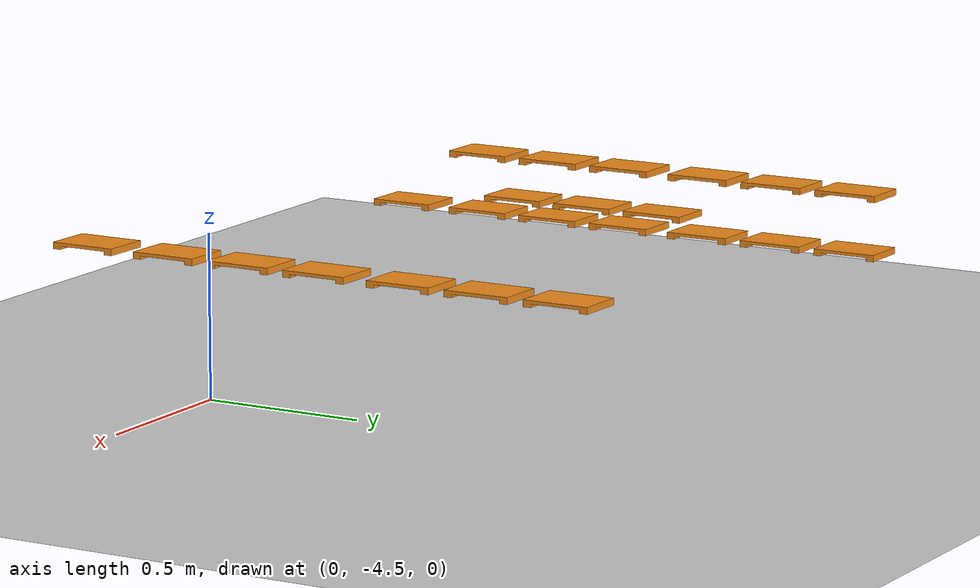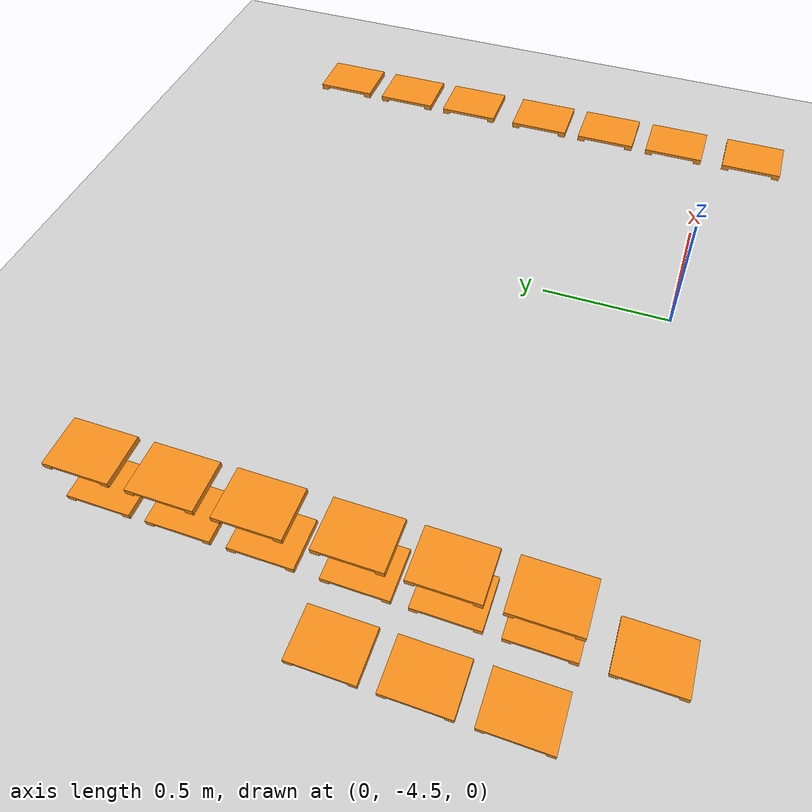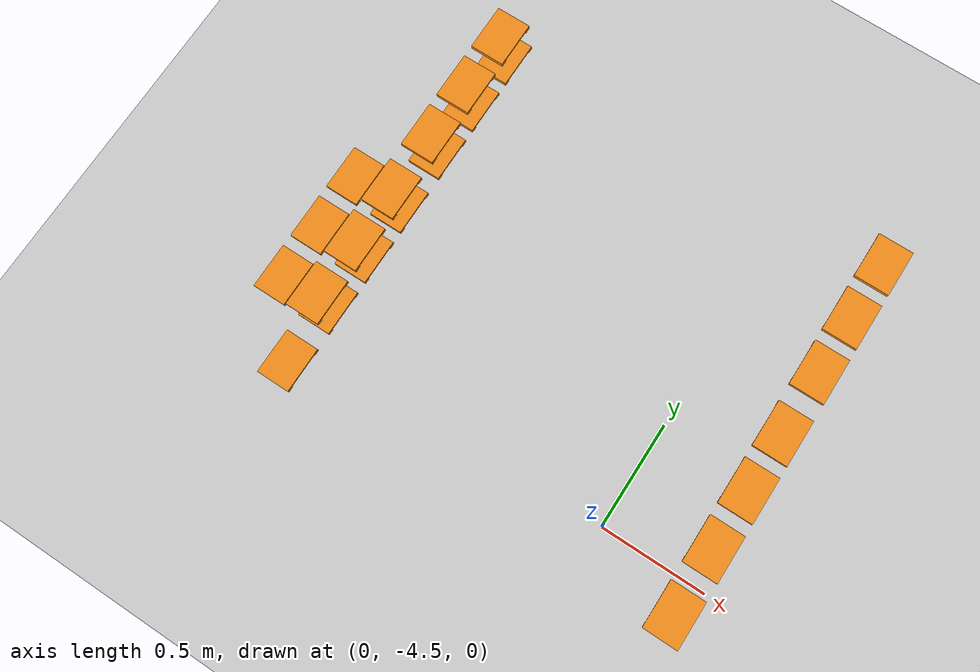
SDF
<sdf version="1.7">
 <world name="default">
  <model name="ground_plane">
   <static>1</static>
   <link name="link">
    <collision name="collision">
     <geometry><plane><normal>0 0 1</normal><size>100 100</size></plane></geometry>
     <surface>
      <contact><collide_bitmask>65535</collide_bitmask></contact>
      <friction><ode><mu>1</mu><mu2>1</mu2></ode></friction>
     </surface>
    </collision>
    <visual name="visual">
     <cast_shadows>0</cast_shadows>
     <geometry><plane><normal>0 0 1</normal><size>100 100</size></plane></geometry>
     <material>
      <script><uri>file://media/materials/scripts/gazebo.material</uri><name>Gazebo/Grey</name></script>
     </material>
    </visual>
   </link>
  </model>
  <model name="pallet_124">
   <pose>-1.61447 -3.8625 0.330966 7e-06 -0.013426 6e-06</pose>
   <link name="link">
    <inertial>
     <pose>0 0 0 0 -0 1.571</pose>
     <inertia>
      <ixx>0.00220983</ixx>
      <ixy>0</ixy>
      <ixz>0</ixz>
      <iyy>0.00128087</iyy>
      <iyz>0</iyz>
      <izz>0.00244903</izz>
     </inertia>
     <mass>0.01</mass>
    </inertial>
    <visual name="visual1">
     <cast_shadows>0</cast_shadows>
     <geometry><mesh><uri>model://pallet/meshes/pallet.stl</uri></mesh></geometry>
     <material>
      <script><uri>file://media/materials/scripts/gazebo.material</uri><name>Gazebo/Orange</name></script>
      <shader type="pixel"><normal_map>__default__</normal_map></shader>
      <emissive>0 0 0 1</emissive>
     </material>
     <pose>0 0 -0 0 -0 1.571</pose>
    </visual>
    <collision name="collision_0">
     <pose>0 0 0 0 -0 1.571</pose>
     <geometry><mesh><uri>model://pallet/meshes/pallet.stl</uri></mesh></geometry>
     <surface>
      <friction>
       <ode><mu>1</mu><mu2>1</mu2><fdir1>0 0 0</fdir1><slip1>0</slip1><slip2>0</slip2></ode>
       <torsional>
        <coefficient>1</coefficient>
        <patch_radius>0</patch_radius>
        <surface_radius>0</surface_radius>
        <use_patch_radius>1</use_patch_radius>
        <ode><slip>0</slip></ode>
       </torsional>
      </friction>
      <bounce><restitution_coefficient>0</restitution_coefficient><threshold>1e+06</threshold></bounce>
      <contact>
       <collide_without_contact>0</collide_without_contact>
       <collide_without_contact_bitmask>1</collide_without_contact_bitmask>
       <collide_bitmask>1</collide_bitmask>
       <ode>
        <soft_cfm>0</soft_cfm>
        <soft_erp>0.2</soft_erp>
        <kp>1e+13</kp>
        <kd>1</kd>
        <max_vel>0.01</max_vel>
        <min_depth>0</min_depth>
       </ode>
       <bullet>
        <split_impulse>1</split_impulse>
        <split_impulse_penetration_threshold>-0.01</split_impulse_penetration_threshold>
        <soft_cfm>0</soft_cfm>
        <soft_erp>0.2</soft_erp>
        <kp>1e+13</kp>
        <kd>1</kd>
       </bullet>
      </contact>
     </surface>
    </collision>
   </link>
   <static>0</static>
  </model>
  <model name="pallet_125">
   <pose>-1.61446 -4.1125 0.330963 2.5e-05 -0.013419 5e-06</pose>
   <link name="link">
    <inertial>
     <pose>0 0 0 0 -0 1.571</pose>
     <inertia>
      <ixx>0.00220983</ixx>
      <ixy>0</ixy>
      <ixz>0</ixz>
      <iyy>0.00128087</iyy>
      <iyz>0</iyz>
      <izz>0.00244903</izz>
     </inertia>
     <mass>0.01</mass>
    </inertial>
    <visual name="visual1">
     <cast_shadows>0</cast_shadows>
     <geometry><mesh><uri>model://pallet/meshes/pallet.stl</uri></mesh></geometry>
     <material>
      <script><uri>file://media/materials/scripts/gazebo.material</uri><name>Gazebo/Orange</name></script>
      <shader type="pixel"><normal_map>__default__</normal_map></shader>
      <emissive>0 0 0 1</emissive>
     </material>
     <pose>0 0 -0 0 -0 1.571</pose>
    </visual>
    <collision name="collision_0">
     <pose>0 0 0 0 -0 1.571</pose>
     <geometry><mesh><uri>model://pallet/meshes/pallet.stl</uri></mesh></geometry>
     <surface>
      <friction>
       <ode><mu>1</mu><mu2>1</mu2><fdir1>0 0 0</fdir1><slip1>0</slip1><slip2>0</slip2></ode>
       <torsional>
        <coefficient>1</coefficient>
        <patch_radius>0</patch_radius>
        <surface_radius>0</surface_radius>
        <use_patch_radius>1</use_patch_radius>
        <ode><slip>0</slip></ode>
       </torsional>
      </friction>
      <bounce><restitution_coefficient>0</restitution_coefficient><threshold>1e+06</threshold></bounce>
      <contact>
       <collide_without_contact>0</collide_without_contact>
       <collide_without_contact_bitmask>1</collide_without_contact_bitmask>
       <collide_bitmask>1</collide_bitmask>
       <ode>
        <soft_cfm>0</soft_cfm>
        <soft_erp>0.2</soft_erp>
        <kp>1e+13</kp>
        <kd>1</kd>
        <max_vel>0.01</max_vel>
        <min_depth>0</min_depth>
       </ode>
       <bullet>
        <split_impulse>1</split_impulse>
        <split_impulse_penetration_threshold>-0.01</split_impulse_penetration_threshold>
        <soft_cfm>0</soft_cfm>
        <soft_erp>0.2</soft_erp>
        <kp>1e+13</kp>
        <kd>1</kd>
       </bullet>
      </contact>
     </surface>
    </collision>
   </link>
   <static>0</static>
  </model>
  <model name="pallet_126">
   <pose>-1.61446 -4.3625 0.330962 2.5e-05 -0.013419 7e-06</pose>
   <link name="link">
    <inertial>
     <pose>0 0 0 0 -0 1.571</pose>
     <inertia>
      <ixx>0.00220983</ixx>
      <ixy>0</ixy>
      <ixz>0</ixz>
      <iyy>0.00128087</iyy>
      <iyz>0</iyz>
      <izz>0.00244903</izz>
     </inertia>
     <mass>0.01</mass>
    </inertial>
    <visual name="visual1">
     <cast_shadows>0</cast_shadows>
     <geometry><mesh><uri>model://pallet/meshes/pallet.stl</uri></mesh></geometry>
     <material>
      <script><uri>file://media/materials/scripts/gazebo.material</uri><name>Gazebo/Orange</name></script>
      <shader type="pixel"><normal_map>__default__</normal_map></shader>
      <emissive>0 0 0 1</emissive>
     </material>
     <pose>0 0 -0 0 -0 1.571</pose>
    </visual>
    <collision name="collision_0">
     <pose>0 0 0 0 -0 1.571</pose>
     <geometry><mesh><uri>model://pallet/meshes/pallet.stl</uri></mesh></geometry>
     <surface>
      <friction>
       <ode><mu>1</mu><mu2>1</mu2><fdir1>0 0 0</fdir1><slip1>0</slip1><slip2>0</slip2></ode>
       <torsional>
        <coefficient>1</coefficient>
        <patch_radius>0</patch_radius>
        <surface_radius>0</surface_radius>
        <use_patch_radius>1</use_patch_radius>
        <ode><slip>0</slip></ode>
       </torsional>
      </friction>
      <bounce><restitution_coefficient>0</restitution_coefficient><threshold>1e+06</threshold></bounce>
      <contact>
       <collide_without_contact>0</collide_without_contact>
       <collide_without_contact_bitmask>1</collide_without_contact_bitmask>
       <collide_bitmask>1</collide_bitmask>
       <ode>
        <soft_cfm>0</soft_cfm>
        <soft_erp>0.2</soft_erp>
        <kp>1e+13</kp>
        <kd>1</kd>
        <max_vel>0.01</max_vel>
        <min_depth>0</min_depth>
       </ode>
       <bullet>
        <split_impulse>1</split_impulse>
        <split_impulse_penetration_threshold>-0.01</split_impulse_penetration_threshold>
        <soft_cfm>0</soft_cfm>
        <soft_erp>0.2</soft_erp>
        <kp>1e+13</kp>
        <kd>1</kd>
       </bullet>
      </contact>
     </surface>
    </collision>
   </link>
   <static>0</static>
  </model>
  <model name="pallet_133">
   <pose>-1.39426 -3.088 0.331018 -2e-06 -0.012783 -1e-06</pose>
   <link name="link">
    <inertial>
     <pose>0 0 0 0 -0 1.571</pose>
     <inertia>
      <ixx>0.00220983</ixx>
      <ixy>0</ixy>
      <ixz>0</ixz>
      <iyy>0.00128087</iyy>
      <iyz>0</iyz>
      <izz>0.00244903</izz>
     </inertia>
     <mass>0.01</mass>
    </inertial>
    <visual name="visual1">
     <cast_shadows>0</cast_shadows>
     <geometry><mesh><uri>model://pallet/meshes/pallet.stl</uri></mesh></geometry>
     <material>
      <script><uri>file://media/materials/scripts/gazebo.material</uri><name>Gazebo/Orange</name></script>
      <shader type="pixel"><normal_map>__default__</normal_map></shader>
      <emissive>0 0 0 1</emissive>
     </material>
     <pose>0 0 -0 0 -0 1.571</pose>
    </visual>
    <collision name="collision_0">
     <pose>0 0 0 0 -0 1.571</pose>
     <geometry><mesh><uri>model://pallet/meshes/pallet.stl</uri></mesh></geometry>
     <surface>
      <friction>
       <ode><mu>1</mu><mu2>1</mu2><fdir1>0 0 0</fdir1><slip1>0</slip1><slip2>0</slip2></ode>
       <torsional>
        <coefficient>1</coefficient>
        <patch_radius>0</patch_radius>
        <surface_radius>0</surface_radius>
        <use_patch_radius>1</use_patch_radius>
        <ode><slip>0</slip></ode>
       </torsional>
      </friction>
      <bounce><restitution_coefficient>0</restitution_coefficient><threshold>1e+06</threshold></bounce>
      <contact>
       <collide_without_contact>0</collide_without_contact>
       <collide_without_contact_bitmask>1</collide_without_contact_bitmask>
       <collide_bitmask>1</collide_bitmask>
       <ode>
        <soft_cfm>0</soft_cfm>
        <soft_erp>0.2</soft_erp>
        <kp>1e+13</kp>
        <kd>1</kd>
        <max_vel>0.01</max_vel>
        <min_depth>0</min_depth>
       </ode>
       <bullet>
        <split_impulse>1</split_impulse>
        <split_impulse_penetration_threshold>-0.01</split_impulse_penetration_threshold>
        <soft_cfm>0</soft_cfm>
        <soft_erp>0.2</soft_erp>
        <kp>1e+13</kp>
        <kd>1</kd>
       </bullet>
      </contact>
     </surface>
    </collision>
   </link>
   <static>0</static>
  </model>
  <model name="pallet_134">
   <pose>-1.39426 -3.338 0.331014 4.2e-05 -0.012779 7e-06</pose>
   <link name="link">
    <inertial>
     <pose>0 0 0 0 -0 1.571</pose>
     <inertia>
      <ixx>0.00220983</ixx>
      <ixy>0</ixy>
      <ixz>0</ixz>
      <iyy>0.00128087</iyy>
      <iyz>0</iyz>
      <izz>0.00244903</izz>
     </inertia>
     <mass>0.01</mass>
    </inertial>
    <visual name="visual1">
     <cast_shadows>0</cast_shadows>
     <geometry><mesh><uri>model://pallet/meshes/pallet.stl</uri></mesh></geometry>
     <material>
      <script><uri>file://media/materials/scripts/gazebo.material</uri><name>Gazebo/Orange</name></script>
      <shader type="pixel"><normal_map>__default__</normal_map></shader>
      <emissive>0 0 0 1</emissive>
     </material>
     <pose>0 0 -0 0 -0 1.571</pose>
    </visual>
    <collision name="collision_0">
     <pose>0 0 0 0 -0 1.571</pose>
     <geometry><mesh><uri>model://pallet/meshes/pallet.stl</uri></mesh></geometry>
     <surface>
      <friction>
       <ode><mu>1</mu><mu2>1</mu2><fdir1>0 0 0</fdir1><slip1>0</slip1><slip2>0</slip2></ode>
       <torsional>
        <coefficient>1</coefficient>
        <patch_radius>0</patch_radius>
        <surface_radius>0</surface_radius>
        <use_patch_radius>1</use_patch_radius>
        <ode><slip>0</slip></ode>
       </torsional>
      </friction>
      <bounce><restitution_coefficient>0</restitution_coefficient><threshold>1e+06</threshold></bounce>
      <contact>
       <collide_without_contact>0</collide_without_contact>
       <collide_without_contact_bitmask>1</collide_without_contact_bitmask>
       <collide_bitmask>1</collide_bitmask>
       <ode>
        <soft_cfm>0</soft_cfm>
        <soft_erp>0.2</soft_erp>
        <kp>1e+13</kp>
        <kd>1</kd>
        <max_vel>0.01</max_vel>
        <min_depth>0</min_depth>
       </ode>
       <bullet>
        <split_impulse>1</split_impulse>
        <split_impulse_penetration_threshold>-0.01</split_impulse_penetration_threshold>
        <soft_cfm>0</soft_cfm>
        <soft_erp>0.2</soft_erp>
        <kp>1e+13</kp>
        <kd>1</kd>
       </bullet>
      </contact>
     </surface>
    </collision>
   </link>
   <static>0</static>
  </model>
  <model name="pallet_135">
   <pose>-1.39426 -3.588 0.331014 3.9e-05 -0.012779 1.1e-05</pose>
   <link name="link">
    <inertial>
     <pose>0 0 0 0 -0 1.571</pose>
     <inertia>
      <ixx>0.00220983</ixx>
      <ixy>0</ixy>
      <ixz>0</ixz>
      <iyy>0.00128087</iyy>
      <iyz>0</iyz>
      <izz>0.00244903</izz>
     </inertia>
     <mass>0.01</mass>
    </inertial>
    <visual name="visual1">
     <cast_shadows>0</cast_shadows>
     <geometry><mesh><uri>model://pallet/meshes/pallet.stl</uri></mesh></geometry>
     <material>
      <script><uri>file://media/materials/scripts/gazebo.material</uri><name>Gazebo/Orange</name></script>
      <shader type="pixel"><normal_map>__default__</normal_map></shader>
      <emissive>0 0 0 1</emissive>
     </material>
     <pose>0 0 -0 0 -0 1.571</pose>
    </visual>
    <collision name="collision_0">
     <pose>0 0 0 0 -0 1.571</pose>
     <geometry><mesh><uri>model://pallet/meshes/pallet.stl</uri></mesh></geometry>
     <surface>
      <friction>
       <ode><mu>1</mu><mu2>1</mu2><fdir1>0 0 0</fdir1><slip1>0</slip1><slip2>0</slip2></ode>
       <torsional>
        <coefficient>1</coefficient>
        <patch_radius>0</patch_radius>
        <surface_radius>0</surface_radius>
        <use_patch_radius>1</use_patch_radius>
        <ode><slip>0</slip></ode>
       </torsional>
      </friction>
      <bounce><restitution_coefficient>0</restitution_coefficient><threshold>1e+06</threshold></bounce>
      <contact>
       <collide_without_contact>0</collide_without_contact>
       <collide_without_contact_bitmask>1</collide_without_contact_bitmask>
       <collide_bitmask>1</collide_bitmask>
       <ode>
        <soft_cfm>0</soft_cfm>
        <soft_erp>0.2</soft_erp>
        <kp>1e+13</kp>
        <kd>1</kd>
        <max_vel>0.01</max_vel>
        <min_depth>0</min_depth>
       </ode>
       <bullet>
        <split_impulse>1</split_impulse>
        <split_impulse_penetration_threshold>-0.01</split_impulse_penetration_threshold>
        <soft_cfm>0</soft_cfm>
        <soft_erp>0.2</soft_erp>
        <kp>1e+13</kp>
        <kd>1</kd>
       </bullet>
      </contact>
     </surface>
    </collision>
   </link>
   <static>0</static>
  </model>
  <model name="pallet_136">
   <pose>-1.39425 -3.8625 0.331016 4e-06 -0.012785 7e-06</pose>
   <link name="link">
    <inertial>
     <pose>0 0 0 0 -0 1.571</pose>
     <inertia>
      <ixx>0.00220983</ixx>
      <ixy>0</ixy>
      <ixz>0</ixz>
      <iyy>0.00128087</iyy>
      <iyz>0</iyz>
      <izz>0.00244903</izz>
     </inertia>
     <mass>0.01</mass>
    </inertial>
    <visual name="visual1">
     <cast_shadows>0</cast_shadows>
     <geometry><mesh><uri>model://pallet/meshes/pallet.stl</uri></mesh></geometry>
     <material>
      <script><uri>file://media/materials/scripts/gazebo.material</uri><name>Gazebo/Orange</name></script>
      <shader type="pixel"><normal_map>__default__</normal_map></shader>
      <emissive>0 0 0 1</emissive>
     </material>
     <pose>0 0 -0 0 -0 1.571</pose>
    </visual>
    <collision name="collision_0">
     <pose>0 0 0 0 -0 1.571</pose>
     <geometry><mesh><uri>model://pallet/meshes/pallet.stl</uri></mesh></geometry>
     <surface>
      <friction>
       <ode><mu>1</mu><mu2>1</mu2><fdir1>0 0 0</fdir1><slip1>0</slip1><slip2>0</slip2></ode>
       <torsional>
        <coefficient>1</coefficient>
        <patch_radius>0</patch_radius>
        <surface_radius>0</surface_radius>
        <use_patch_radius>1</use_patch_radius>
        <ode><slip>0</slip></ode>
       </torsional>
      </friction>
      <bounce><restitution_coefficient>0</restitution_coefficient><threshold>1e+06</threshold></bounce>
      <contact>
       <collide_without_contact>0</collide_without_contact>
       <collide_without_contact_bitmask>1</collide_without_contact_bitmask>
       <collide_bitmask>1</collide_bitmask>
       <ode>
        <soft_cfm>0</soft_cfm>
        <soft_erp>0.2</soft_erp>
        <kp>1e+13</kp>
        <kd>1</kd>
        <max_vel>0.01</max_vel>
        <min_depth>0</min_depth>
       </ode>
       <bullet>
        <split_impulse>1</split_impulse>
        <split_impulse_penetration_threshold>-0.01</split_impulse_penetration_threshold>
        <soft_cfm>0</soft_cfm>
        <soft_erp>0.2</soft_erp>
        <kp>1e+13</kp>
        <kd>1</kd>
       </bullet>
      </contact>
     </surface>
    </collision>
   </link>
   <static>0</static>
  </model>
  <model name="pallet_137">
   <pose>-1.39425 -4.1125 0.331014 2.4e-05 -0.012779 7e-06</pose>
   <link name="link">
    <inertial>
     <pose>0 0 0 0 -0 1.571</pose>
     <inertia>
      <ixx>0.00220983</ixx>
      <ixy>0</ixy>
      <ixz>0</ixz>
      <iyy>0.00128087</iyy>
      <iyz>0</iyz>
      <izz>0.00244903</izz>
     </inertia>
     <mass>0.01</mass>
    </inertial>
    <visual name="visual1">
     <cast_shadows>0</cast_shadows>
     <geometry><mesh><uri>model://pallet/meshes/pallet.stl</uri></mesh></geometry>
     <material>
      <script><uri>file://media/materials/scripts/gazebo.material</uri><name>Gazebo/Orange</name></script>
      <shader type="pixel"><normal_map>__default__</normal_map></shader>
      <emissive>0 0 0 1</emissive>
     </material>
     <pose>0 0 -0 0 -0 1.571</pose>
    </visual>
    <collision name="collision_0">
     <pose>0 0 0 0 -0 1.571</pose>
     <geometry><mesh><uri>model://pallet/meshes/pallet.stl</uri></mesh></geometry>
     <surface>
      <friction>
       <ode><mu>1</mu><mu2>1</mu2><fdir1>0 0 0</fdir1><slip1>0</slip1><slip2>0</slip2></ode>
       <torsional>
        <coefficient>1</coefficient>
        <patch_radius>0</patch_radius>
        <surface_radius>0</surface_radius>
        <use_patch_radius>1</use_patch_radius>
        <ode><slip>0</slip></ode>
       </torsional>
      </friction>
      <bounce><restitution_coefficient>0</restitution_coefficient><threshold>1e+06</threshold></bounce>
      <contact>
       <collide_without_contact>0</collide_without_contact>
       <collide_without_contact_bitmask>1</collide_without_contact_bitmask>
       <collide_bitmask>1</collide_bitmask>
       <ode>
        <soft_cfm>0</soft_cfm>
        <soft_erp>0.2</soft_erp>
        <kp>1e+13</kp>
        <kd>1</kd>
        <max_vel>0.01</max_vel>
        <min_depth>0</min_depth>
       </ode>
       <bullet>
        <split_impulse>1</split_impulse>
        <split_impulse_penetration_threshold>-0.01</split_impulse_penetration_threshold>
        <soft_cfm>0</soft_cfm>
        <soft_erp>0.2</soft_erp>
        <kp>1e+13</kp>
        <kd>1</kd>
       </bullet>
      </contact>
     </surface>
    </collision>
   </link>
   <static>0</static>
  </model>
  <model name="pallet_138">
   <pose>-1.39425 -4.3625 0.331013 2.6e-05 -0.012777 8e-06</pose>
   <link name="link">
    <inertial>
     <pose>0 0 0 0 -0 1.571</pose>
     <inertia>
      <ixx>0.00220983</ixx>
      <ixy>0</ixy>
      <ixz>0</ixz>
      <iyy>0.00128087</iyy>
      <iyz>0</iyz>
      <izz>0.00244903</izz>
     </inertia>
     <mass>0.01</mass>
    </inertial>
    <visual name="visual1">
     <cast_shadows>0</cast_shadows>
     <geometry><mesh><uri>model://pallet/meshes/pallet.stl</uri></mesh></geometry>
     <material>
      <script><uri>file://media/materials/scripts/gazebo.material</uri><name>Gazebo/Orange</name></script>
      <shader type="pixel"><normal_map>__default__</normal_map></shader>
      <emissive>0 0 0 1</emissive>
     </material>
     <pose>0 0 -0 0 -0 1.571</pose>
    </visual>
    <collision name="collision_0">
     <pose>0 0 0 0 -0 1.571</pose>
     <geometry><mesh><uri>model://pallet/meshes/pallet.stl</uri></mesh></geometry>
     <surface>
      <friction>
       <ode><mu>1</mu><mu2>1</mu2><fdir1>0 0 0</fdir1><slip1>0</slip1><slip2>0</slip2></ode>
       <torsional>
        <coefficient>1</coefficient>
        <patch_radius>0</patch_radius>
        <surface_radius>0</surface_radius>
        <use_patch_radius>1</use_patch_radius>
        <ode><slip>0</slip></ode>
       </torsional>
      </friction>
      <bounce><restitution_coefficient>0</restitution_coefficient><threshold>1e+06</threshold></bounce>
      <contact>
       <collide_without_contact>0</collide_without_contact>
       <collide_without_contact_bitmask>1</collide_without_contact_bitmask>
       <collide_bitmask>1</collide_bitmask>
       <ode>
        <soft_cfm>0</soft_cfm>
        <soft_erp>0.2</soft_erp>
        <kp>1e+13</kp>
        <kd>1</kd>
        <max_vel>0.01</max_vel>
        <min_depth>0</min_depth>
       </ode>
       <bullet>
        <split_impulse>1</split_impulse>
        <split_impulse_penetration_threshold>-0.01</split_impulse_penetration_threshold>
        <soft_cfm>0</soft_cfm>
        <soft_erp>0.2</soft_erp>
        <kp>1e+13</kp>
        <kd>1</kd>
       </bullet>
      </contact>
     </surface>
    </collision>
   </link>
   <static>0</static>
  </model>
  <model name="pallet_140">
   <pose>-1.39425 -4.637 0.331013 8e-06 -0.012779 5e-06</pose>
   <link name="link">
    <inertial>
     <pose>0 0 0 0 -0 1.571</pose>
     <inertia>
      <ixx>0.00220983</ixx>
      <ixy>0</ixy>
      <ixz>0</ixz>
      <iyy>0.00128087</iyy>
      <iyz>0</iyz>
      <izz>0.00244903</izz>
     </inertia>
     <mass>0.01</mass>
    </inertial>
    <visual name="visual1">
     <cast_shadows>0</cast_shadows>
     <geometry><mesh><uri>model://pallet/meshes/pallet.stl</uri></mesh></geometry>
     <material>
      <script><uri>file://media/materials/scripts/gazebo.material</uri><name>Gazebo/Orange</name></script>
      <shader type="pixel"><normal_map>__default__</normal_map></shader>
      <emissive>0 0 0 1</emissive>
     </material>
     <pose>0 0 -0 0 -0 1.571</pose>
    </visual>
    <collision name="collision_0">
     <pose>0 0 0 0 -0 1.571</pose>
     <geometry><mesh><uri>model://pallet/meshes/pallet.stl</uri></mesh></geometry>
     <surface>
      <friction>
       <ode><mu>1</mu><mu2>1</mu2><fdir1>0 0 0</fdir1><slip1>0</slip1><slip2>0</slip2></ode>
       <torsional>
        <coefficient>1</coefficient>
        <patch_radius>0</patch_radius>
        <surface_radius>0</surface_radius>
        <use_patch_radius>1</use_patch_radius>
        <ode><slip>0</slip></ode>
       </torsional>
      </friction>
      <bounce><restitution_coefficient>0</restitution_coefficient><threshold>1e+06</threshold></bounce>
      <contact>
       <collide_without_contact>0</collide_without_contact>
       <collide_without_contact_bitmask>1</collide_without_contact_bitmask>
       <collide_bitmask>1</collide_bitmask>
       <ode>
        <soft_cfm>0</soft_cfm>
        <soft_erp>0.2</soft_erp>
        <kp>1e+13</kp>
        <kd>1</kd>
        <max_vel>0.01</max_vel>
        <min_depth>0</min_depth>
       </ode>
       <bullet>
        <split_impulse>1</split_impulse>
        <split_impulse_penetration_threshold>-0.01</split_impulse_penetration_threshold>
        <soft_cfm>0</soft_cfm>
        <soft_erp>0.2</soft_erp>
        <kp>1e+13</kp>
        <kd>1</kd>
       </bullet>
      </contact>
     </surface>
    </collision>
   </link>
   <static>0</static>
  </model>
  <model name="pallet_145">
   <pose>-1.39656 -3.088 0.511003 -3e-06 -0.012784 -2e-06</pose>
   <link name="link">
    <inertial>
     <pose>0 0 0 0 -0 1.571</pose>
     <inertia>
      <ixx>0.00220983</ixx>
      <ixy>0</ixy>
      <ixz>0</ixz>
      <iyy>0.00128087</iyy>
      <iyz>0</iyz>
      <izz>0.00244903</izz>
     </inertia>
     <mass>0.01</mass>
    </inertial>
    <visual name="visual1">
     <cast_shadows>0</cast_shadows>
     <geometry><mesh><uri>model://pallet/meshes/pallet.stl</uri></mesh></geometry>
     <material>
      <script><uri>file://media/materials/scripts/gazebo.material</uri><name>Gazebo/Orange</name></script>
      <shader type="pixel"><normal_map>__default__</normal_map></shader>
      <emissive>0 0 0 1</emissive>
     </material>
     <pose>0 0 -0 0 -0 1.571</pose>
    </visual>
    <collision name="collision_0">
     <pose>0 0 0 0 -0 1.571</pose>
     <geometry><mesh><uri>model://pallet/meshes/pallet.stl</uri></mesh></geometry>
     <surface>
      <friction>
       <ode><mu>1</mu><mu2>1</mu2><fdir1>0 0 0</fdir1><slip1>0</slip1><slip2>0</slip2></ode>
       <torsional>
        <coefficient>1</coefficient>
        <patch_radius>0</patch_radius>
        <surface_radius>0</surface_radius>
        <use_patch_radius>1</use_patch_radius>
        <ode><slip>0</slip></ode>
       </torsional>
      </friction>
      <bounce><restitution_coefficient>0</restitution_coefficient><threshold>1e+06</threshold></bounce>
      <contact>
       <collide_without_contact>0</collide_without_contact>
       <collide_without_contact_bitmask>1</collide_without_contact_bitmask>
       <collide_bitmask>1</collide_bitmask>
       <ode>
        <soft_cfm>0</soft_cfm>
        <soft_erp>0.2</soft_erp>
        <kp>1e+13</kp>
        <kd>1</kd>
        <max_vel>0.01</max_vel>
        <min_depth>0</min_depth>
       </ode>
       <bullet>
        <split_impulse>1</split_impulse>
        <split_impulse_penetration_threshold>-0.01</split_impulse_penetration_threshold>
        <soft_cfm>0</soft_cfm>
        <soft_erp>0.2</soft_erp>
        <kp>1e+13</kp>
        <kd>1</kd>
       </bullet>
      </contact>
     </surface>
    </collision>
   </link>
   <static>0</static>
  </model>
  <model name="pallet_146">
   <pose>-1.39656 -3.338 0.510999 4.3e-05 -0.012778 9e-06</pose>
   <link name="link">
    <inertial>
     <pose>0 0 0 0 -0 1.571</pose>
     <inertia>
      <ixx>0.00220983</ixx>
      <ixy>0</ixy>
      <ixz>0</ixz>
      <iyy>0.00128087</iyy>
      <iyz>0</iyz>
      <izz>0.00244903</izz>
     </inertia>
     <mass>0.01</mass>
    </inertial>
    <visual name="visual1">
     <cast_shadows>0</cast_shadows>
     <geometry><mesh><uri>model://pallet/meshes/pallet.stl</uri></mesh></geometry>
     <material>
      <script><uri>file://media/materials/scripts/gazebo.material</uri><name>Gazebo/Orange</name></script>
      <shader type="pixel"><normal_map>__default__</normal_map></shader>
      <emissive>0 0 0 1</emissive>
     </material>
     <pose>0 0 -0 0 -0 1.571</pose>
    </visual>
    <collision name="collision_0">
     <pose>0 0 0 0 -0 1.571</pose>
     <geometry><mesh><uri>model://pallet/meshes/pallet.stl</uri></mesh></geometry>
     <surface>
      <friction>
       <ode><mu>1</mu><mu2>1</mu2><fdir1>0 0 0</fdir1><slip1>0</slip1><slip2>0</slip2></ode>
       <torsional>
        <coefficient>1</coefficient>
        <patch_radius>0</patch_radius>
        <surface_radius>0</surface_radius>
        <use_patch_radius>1</use_patch_radius>
        <ode><slip>0</slip></ode>
       </torsional>
      </friction>
      <bounce><restitution_coefficient>0</restitution_coefficient><threshold>1e+06</threshold></bounce>
      <contact>
       <collide_without_contact>0</collide_without_contact>
       <collide_without_contact_bitmask>1</collide_without_contact_bitmask>
       <collide_bitmask>1</collide_bitmask>
       <ode>
        <soft_cfm>0</soft_cfm>
        <soft_erp>0.2</soft_erp>
        <kp>1e+13</kp>
        <kd>1</kd>
        <max_vel>0.01</max_vel>
        <min_depth>0</min_depth>
       </ode>
       <bullet>
        <split_impulse>1</split_impulse>
        <split_impulse_penetration_threshold>-0.01</split_impulse_penetration_threshold>
        <soft_cfm>0</soft_cfm>
        <soft_erp>0.2</soft_erp>
        <kp>1e+13</kp>
        <kd>1</kd>
       </bullet>
      </contact>
     </surface>
    </collision>
   </link>
   <static>0</static>
  </model>
  <model name="pallet_147">
   <pose>-1.39656 -3.588 0.510999 4.1e-05 -0.012779 1e-05</pose>
   <link name="link">
    <inertial>
     <pose>0 0 0 0 -0 1.571</pose>
     <inertia>
      <ixx>0.00220983</ixx>
      <ixy>0</ixy>
      <ixz>0</ixz>
      <iyy>0.00128087</iyy>
      <iyz>0</iyz>
      <izz>0.00244903</izz>
     </inertia>
     <mass>0.01</mass>
    </inertial>
    <visual name="visual1">
     <cast_shadows>0</cast_shadows>
     <geometry><mesh><uri>model://pallet/meshes/pallet.stl</uri></mesh></geometry>
     <material>
      <script><uri>file://media/materials/scripts/gazebo.material</uri><name>Gazebo/Orange</name></script>
      <shader type="pixel"><normal_map>__default__</normal_map></shader>
      <emissive>0 0 0 1</emissive>
     </material>
     <pose>0 0 -0 0 -0 1.571</pose>
    </visual>
    <collision name="collision_0">
     <pose>0 0 0 0 -0 1.571</pose>
     <geometry><mesh><uri>model://pallet/meshes/pallet.stl</uri></mesh></geometry>
     <surface>
      <friction>
       <ode><mu>1</mu><mu2>1</mu2><fdir1>0 0 0</fdir1><slip1>0</slip1><slip2>0</slip2></ode>
       <torsional>
        <coefficient>1</coefficient>
        <patch_radius>0</patch_radius>
        <surface_radius>0</surface_radius>
        <use_patch_radius>1</use_patch_radius>
        <ode><slip>0</slip></ode>
       </torsional>
      </friction>
      <bounce><restitution_coefficient>0</restitution_coefficient><threshold>1e+06</threshold></bounce>
      <contact>
       <collide_without_contact>0</collide_without_contact>
       <collide_without_contact_bitmask>1</collide_without_contact_bitmask>
       <collide_bitmask>1</collide_bitmask>
       <ode>
        <soft_cfm>0</soft_cfm>
        <soft_erp>0.2</soft_erp>
        <kp>1e+13</kp>
        <kd>1</kd>
        <max_vel>0.01</max_vel>
        <min_depth>0</min_depth>
       </ode>
       <bullet>
        <split_impulse>1</split_impulse>
        <split_impulse_penetration_threshold>-0.01</split_impulse_penetration_threshold>
        <soft_cfm>0</soft_cfm>
        <soft_erp>0.2</soft_erp>
        <kp>1e+13</kp>
        <kd>1</kd>
       </bullet>
      </contact>
     </surface>
    </collision>
   </link>
   <static>0</static>
  </model>
  <model name="pallet_148">
   <pose>-1.39655 -3.8625 0.511002 -0 -0.012786 8e-06</pose>
   <link name="link">
    <inertial>
     <pose>0 0 0 0 -0 1.571</pose>
     <inertia>
      <ixx>0.00220983</ixx>
      <ixy>0</ixy>
      <ixz>0</ixz>
      <iyy>0.00128087</iyy>
      <iyz>0</iyz>
      <izz>0.00244903</izz>
     </inertia>
     <mass>0.01</mass>
    </inertial>
    <visual name="visual1">
     <cast_shadows>0</cast_shadows>
     <geometry><mesh><uri>model://pallet/meshes/pallet.stl</uri></mesh></geometry>
     <material>
      <script><uri>file://media/materials/scripts/gazebo.material</uri><name>Gazebo/Orange</name></script>
      <shader type="pixel"><normal_map>__default__</normal_map></shader>
      <emissive>0 0 0 1</emissive>
     </material>
     <pose>0 0 -0 0 -0 1.571</pose>
    </visual>
    <collision name="collision_0">
     <pose>0 0 0 0 -0 1.571</pose>
     <geometry><mesh><uri>model://pallet/meshes/pallet.stl</uri></mesh></geometry>
     <surface>
      <friction>
       <ode><mu>1</mu><mu2>1</mu2><fdir1>0 0 0</fdir1><slip1>0</slip1><slip2>0</slip2></ode>
       <torsional>
        <coefficient>1</coefficient>
        <patch_radius>0</patch_radius>
        <surface_radius>0</surface_radius>
        <use_patch_radius>1</use_patch_radius>
        <ode><slip>0</slip></ode>
       </torsional>
      </friction>
      <bounce><restitution_coefficient>0</restitution_coefficient><threshold>1e+06</threshold></bounce>
      <contact>
       <collide_without_contact>0</collide_without_contact>
       <collide_without_contact_bitmask>1</collide_without_contact_bitmask>
       <collide_bitmask>1</collide_bitmask>
       <ode>
        <soft_cfm>0</soft_cfm>
        <soft_erp>0.2</soft_erp>
        <kp>1e+13</kp>
        <kd>1</kd>
        <max_vel>0.01</max_vel>
        <min_depth>0</min_depth>
       </ode>
       <bullet>
        <split_impulse>1</split_impulse>
        <split_impulse_penetration_threshold>-0.01</split_impulse_penetration_threshold>
        <soft_cfm>0</soft_cfm>
        <soft_erp>0.2</soft_erp>
        <kp>1e+13</kp>
        <kd>1</kd>
       </bullet>
      </contact>
     </surface>
    </collision>
   </link>
   <static>0</static>
  </model>
  <model name="pallet_149">
   <pose>-1.39655 -4.1125 0.510999 1.5e-05 -0.012779 7e-06</pose>
   <link name="link">
    <inertial>
     <pose>0 0 0 0 -0 1.571</pose>
     <inertia>
      <ixx>0.00220983</ixx>
      <ixy>0</ixy>
      <ixz>0</ixz>
      <iyy>0.00128087</iyy>
      <iyz>0</iyz>
      <izz>0.00244903</izz>
     </inertia>
     <mass>0.01</mass>
    </inertial>
    <visual name="visual1">
     <cast_shadows>0</cast_shadows>
     <geometry><mesh><uri>model://pallet/meshes/pallet.stl</uri></mesh></geometry>
     <material>
      <script><uri>file://media/materials/scripts/gazebo.material</uri><name>Gazebo/Orange</name></script>
      <shader type="pixel"><normal_map>__default__</normal_map></shader>
      <emissive>0 0 0 1</emissive>
     </material>
     <pose>0 0 -0 0 -0 1.571</pose>
    </visual>
    <collision name="collision_0">
     <pose>0 0 0 0 -0 1.571</pose>
     <geometry><mesh><uri>model://pallet/meshes/pallet.stl</uri></mesh></geometry>
     <surface>
      <friction>
       <ode><mu>1</mu><mu2>1</mu2><fdir1>0 0 0</fdir1><slip1>0</slip1><slip2>0</slip2></ode>
       <torsional>
        <coefficient>1</coefficient>
        <patch_radius>0</patch_radius>
        <surface_radius>0</surface_radius>
        <use_patch_radius>1</use_patch_radius>
        <ode><slip>0</slip></ode>
       </torsional>
      </friction>
      <bounce><restitution_coefficient>0</restitution_coefficient><threshold>1e+06</threshold></bounce>
      <contact>
       <collide_without_contact>0</collide_without_contact>
       <collide_without_contact_bitmask>1</collide_without_contact_bitmask>
       <collide_bitmask>1</collide_bitmask>
       <ode>
        <soft_cfm>0</soft_cfm>
        <soft_erp>0.2</soft_erp>
        <kp>1e+13</kp>
        <kd>1</kd>
        <max_vel>0.01</max_vel>
        <min_depth>0</min_depth>
       </ode>
       <bullet>
        <split_impulse>1</split_impulse>
        <split_impulse_penetration_threshold>-0.01</split_impulse_penetration_threshold>
        <soft_cfm>0</soft_cfm>
        <soft_erp>0.2</soft_erp>
        <kp>1e+13</kp>
        <kd>1</kd>
       </bullet>
      </contact>
     </surface>
    </collision>
   </link>
   <static>0</static>
  </model>
  <model name="pallet_150">
   <pose>-1.39655 -4.3625 0.510998 2.8e-05 -0.012778 8e-06</pose>
   <link name="link">
    <inertial>
     <pose>0 0 0 0 -0 1.571</pose>
     <inertia>
      <ixx>0.00220983</ixx>
      <ixy>0</ixy>
      <ixz>0</ixz>
      <iyy>0.00128087</iyy>
      <iyz>0</iyz>
      <izz>0.00244903</izz>
     </inertia>
     <mass>0.01</mass>
    </inertial>
    <visual name="visual1">
     <cast_shadows>0</cast_shadows>
     <geometry><mesh><uri>model://pallet/meshes/pallet.stl</uri></mesh></geometry>
     <material>
      <script><uri>file://media/materials/scripts/gazebo.material</uri><name>Gazebo/Orange</name></script>
      <shader type="pixel"><normal_map>__default__</normal_map></shader>
      <emissive>0 0 0 1</emissive>
     </material>
     <pose>0 0 -0 0 -0 1.571</pose>
    </visual>
    <collision name="collision_0">
     <pose>0 0 0 0 -0 1.571</pose>
     <geometry><mesh><uri>model://pallet/meshes/pallet.stl</uri></mesh></geometry>
     <surface>
      <friction>
       <ode><mu>1</mu><mu2>1</mu2><fdir1>0 0 0</fdir1><slip1>0</slip1><slip2>0</slip2></ode>
       <torsional>
        <coefficient>1</coefficient>
        <patch_radius>0</patch_radius>
        <surface_radius>0</surface_radius>
        <use_patch_radius>1</use_patch_radius>
        <ode><slip>0</slip></ode>
       </torsional>
      </friction>
      <bounce><restitution_coefficient>0</restitution_coefficient><threshold>1e+06</threshold></bounce>
      <contact>
       <collide_without_contact>0</collide_without_contact>
       <collide_without_contact_bitmask>1</collide_without_contact_bitmask>
       <collide_bitmask>1</collide_bitmask>
       <ode>
        <soft_cfm>0</soft_cfm>
        <soft_erp>0.2</soft_erp>
        <kp>1e+13</kp>
        <kd>1</kd>
        <max_vel>0.01</max_vel>
        <min_depth>0</min_depth>
       </ode>
       <bullet>
        <split_impulse>1</split_impulse>
        <split_impulse_penetration_threshold>-0.01</split_impulse_penetration_threshold>
        <soft_cfm>0</soft_cfm>
        <soft_erp>0.2</soft_erp>
        <kp>1e+13</kp>
        <kd>1</kd>
       </bullet>
      </contact>
     </surface>
    </collision>
   </link>
   <static>0</static>
  </model>
  <model name="pallet_181">
   <pose>0.383439 -3.088 0.511 2e-06 -0.012789 -5e-06</pose>
   <link name="link">
    <inertial>
     <pose>0 0 0 0 -0 1.571</pose>
     <inertia>
      <ixx>0.00220983</ixx>
      <ixy>0</ixy>
      <ixz>0</ixz>
      <iyy>0.00128087</iyy>
      <iyz>0</iyz>
      <izz>0.00244903</izz>
     </inertia>
     <mass>0.01</mass>
    </inertial>
    <visual name="visual1">
     <cast_shadows>0</cast_shadows>
     <geometry><mesh><uri>model://pallet/meshes/pallet.stl</uri></mesh></geometry>
     <material>
      <script><uri>file://media/materials/scripts/gazebo.material</uri><name>Gazebo/Orange</name></script>
      <shader type="pixel"><normal_map>__default__</normal_map></shader>
      <emissive>0 0 0 1</emissive>
     </material>
     <pose>0 0 -0 0 -0 1.571</pose>
    </visual>
    <collision name="collision_0">
     <pose>0 0 0 0 -0 1.571</pose>
     <geometry><mesh><uri>model://pallet/meshes/pallet.stl</uri></mesh></geometry>
     <surface>
      <friction>
       <ode><mu>1</mu><mu2>1</mu2><fdir1>0 0 0</fdir1><slip1>0</slip1><slip2>0</slip2></ode>
       <torsional>
        <coefficient>1</coefficient>
        <patch_radius>0</patch_radius>
        <surface_radius>0</surface_radius>
        <use_patch_radius>1</use_patch_radius>
        <ode><slip>0</slip></ode>
       </torsional>
      </friction>
      <bounce><restitution_coefficient>0</restitution_coefficient><threshold>1e+06</threshold></bounce>
      <contact>
       <collide_without_contact>0</collide_without_contact>
       <collide_without_contact_bitmask>1</collide_without_contact_bitmask>
       <collide_bitmask>1</collide_bitmask>
       <ode>
        <soft_cfm>0</soft_cfm>
        <soft_erp>0.2</soft_erp>
        <kp>1e+13</kp>
        <kd>1</kd>
        <max_vel>0.01</max_vel>
        <min_depth>0</min_depth>
       </ode>
       <bullet>
        <split_impulse>1</split_impulse>
        <split_impulse_penetration_threshold>-0.01</split_impulse_penetration_threshold>
        <soft_cfm>0</soft_cfm>
        <soft_erp>0.2</soft_erp>
        <kp>1e+13</kp>
        <kd>1</kd>
       </bullet>
      </contact>
     </surface>
    </collision>
   </link>
   <static>0</static>
  </model>
  <model name="pallet_182">
   <pose>0.383439 -3.338 0.510996 3.9e-05 -0.012782 3e-06</pose>
   <link name="link">
    <inertial>
     <pose>0 0 0 0 -0 1.571</pose>
     <inertia>
      <ixx>0.00220983</ixx>
      <ixy>0</ixy>
      <ixz>0</ixz>
      <iyy>0.00128087</iyy>
      <iyz>0</iyz>
      <izz>0.00244903</izz>
     </inertia>
     <mass>0.01</mass>
    </inertial>
    <visual name="visual1">
     <cast_shadows>0</cast_shadows>
     <geometry><mesh><uri>model://pallet/meshes/pallet.stl</uri></mesh></geometry>
     <material>
      <script><uri>file://media/materials/scripts/gazebo.material</uri><name>Gazebo/Orange</name></script>
      <shader type="pixel"><normal_map>__default__</normal_map></shader>
      <emissive>0 0 0 1</emissive>
     </material>
     <pose>0 0 -0 0 -0 1.571</pose>
    </visual>
    <collision name="collision_0">
     <pose>0 0 0 0 -0 1.571</pose>
     <geometry><mesh><uri>model://pallet/meshes/pallet.stl</uri></mesh></geometry>
     <surface>
      <friction>
       <ode><mu>1</mu><mu2>1</mu2><fdir1>0 0 0</fdir1><slip1>0</slip1><slip2>0</slip2></ode>
       <torsional>
        <coefficient>1</coefficient>
        <patch_radius>0</patch_radius>
        <surface_radius>0</surface_radius>
        <use_patch_radius>1</use_patch_radius>
        <ode><slip>0</slip></ode>
       </torsional>
      </friction>
      <bounce><restitution_coefficient>0</restitution_coefficient><threshold>1e+06</threshold></bounce>
      <contact>
       <collide_without_contact>0</collide_without_contact>
       <collide_without_contact_bitmask>1</collide_without_contact_bitmask>
       <collide_bitmask>1</collide_bitmask>
       <ode>
        <soft_cfm>0</soft_cfm>
        <soft_erp>0.2</soft_erp>
        <kp>1e+13</kp>
        <kd>1</kd>
        <max_vel>0.01</max_vel>
        <min_depth>0</min_depth>
       </ode>
       <bullet>
        <split_impulse>1</split_impulse>
        <split_impulse_penetration_threshold>-0.01</split_impulse_penetration_threshold>
        <soft_cfm>0</soft_cfm>
        <soft_erp>0.2</soft_erp>
        <kp>1e+13</kp>
        <kd>1</kd>
       </bullet>
      </contact>
     </surface>
    </collision>
   </link>
   <static>0</static>
  </model>
  <model name="pallet_183">
   <pose>0.383441 -3.588 0.510996 4.3e-05 -0.012783 2e-06</pose>
   <link name="link">
    <inertial>
     <pose>0 0 0 0 -0 1.571</pose>
     <inertia>
      <ixx>0.00220983</ixx>
      <ixy>0</ixy>
      <ixz>0</ixz>
      <iyy>0.00128087</iyy>
      <iyz>0</iyz>
      <izz>0.00244903</izz>
     </inertia>
     <mass>0.01</mass>
    </inertial>
    <visual name="visual1">
     <cast_shadows>0</cast_shadows>
     <geometry><mesh><uri>model://pallet/meshes/pallet.stl</uri></mesh></geometry>
     <material>
      <script><uri>file://media/materials/scripts/gazebo.material</uri><name>Gazebo/Orange</name></script>
      <shader type="pixel"><normal_map>__default__</normal_map></shader>
      <emissive>0 0 0 1</emissive>
     </material>
     <pose>0 0 -0 0 -0 1.571</pose>
    </visual>
    <collision name="collision_0">
     <pose>0 0 0 0 -0 1.571</pose>
     <geometry><mesh><uri>model://pallet/meshes/pallet.stl</uri></mesh></geometry>
     <surface>
      <friction>
       <ode><mu>1</mu><mu2>1</mu2><fdir1>0 0 0</fdir1><slip1>0</slip1><slip2>0</slip2></ode>
       <torsional>
        <coefficient>1</coefficient>
        <patch_radius>0</patch_radius>
        <surface_radius>0</surface_radius>
        <use_patch_radius>1</use_patch_radius>
        <ode><slip>0</slip></ode>
       </torsional>
      </friction>
      <bounce><restitution_coefficient>0</restitution_coefficient><threshold>1e+06</threshold></bounce>
      <contact>
       <collide_without_contact>0</collide_without_contact>
       <collide_without_contact_bitmask>1</collide_without_contact_bitmask>
       <collide_bitmask>1</collide_bitmask>
       <ode>
        <soft_cfm>0</soft_cfm>
        <soft_erp>0.2</soft_erp>
        <kp>1e+13</kp>
        <kd>1</kd>
        <max_vel>0.01</max_vel>
        <min_depth>0</min_depth>
       </ode>
       <bullet>
        <split_impulse>1</split_impulse>
        <split_impulse_penetration_threshold>-0.01</split_impulse_penetration_threshold>
        <soft_cfm>0</soft_cfm>
        <soft_erp>0.2</soft_erp>
        <kp>1e+13</kp>
        <kd>1</kd>
       </bullet>
      </contact>
     </surface>
    </collision>
   </link>
   <static>0</static>
  </model>
  <model name="pallet_184">
   <pose>0.383444 -3.8625 0.510998 1e-05 -0.012791 2e-06</pose>
   <link name="link">
    <inertial>
     <pose>0 0 0 0 -0 1.571</pose>
     <inertia>
      <ixx>0.00220983</ixx>
      <ixy>0</ixy>
      <ixz>0</ixz>
      <iyy>0.00128087</iyy>
      <iyz>0</iyz>
      <izz>0.00244903</izz>
     </inertia>
     <mass>0.01</mass>
    </inertial>
    <visual name="visual1">
     <cast_shadows>0</cast_shadows>
     <geometry><mesh><uri>model://pallet/meshes/pallet.stl</uri></mesh></geometry>
     <material>
      <script><uri>file://media/materials/scripts/gazebo.material</uri><name>Gazebo/Orange</name></script>
      <shader type="pixel"><normal_map>__default__</normal_map></shader>
      <emissive>0 0 0 1</emissive>
     </material>
     <pose>0 0 -0 0 -0 1.571</pose>
    </visual>
    <collision name="collision_0">
     <pose>0 0 0 0 -0 1.571</pose>
     <geometry><mesh><uri>model://pallet/meshes/pallet.stl</uri></mesh></geometry>
     <surface>
      <friction>
       <ode><mu>1</mu><mu2>1</mu2><fdir1>0 0 0</fdir1><slip1>0</slip1><slip2>0</slip2></ode>
       <torsional>
        <coefficient>1</coefficient>
        <patch_radius>0</patch_radius>
        <surface_radius>0</surface_radius>
        <use_patch_radius>1</use_patch_radius>
        <ode><slip>0</slip></ode>
       </torsional>
      </friction>
      <bounce><restitution_coefficient>0</restitution_coefficient><threshold>1e+06</threshold></bounce>
      <contact>
       <collide_without_contact>0</collide_without_contact>
       <collide_without_contact_bitmask>1</collide_without_contact_bitmask>
       <collide_bitmask>1</collide_bitmask>
       <ode>
        <soft_cfm>0</soft_cfm>
        <soft_erp>0.2</soft_erp>
        <kp>1e+13</kp>
        <kd>1</kd>
        <max_vel>0.01</max_vel>
        <min_depth>0</min_depth>
       </ode>
       <bullet>
        <split_impulse>1</split_impulse>
        <split_impulse_penetration_threshold>-0.01</split_impulse_penetration_threshold>
        <soft_cfm>0</soft_cfm>
        <soft_erp>0.2</soft_erp>
        <kp>1e+13</kp>
        <kd>1</kd>
       </bullet>
      </contact>
     </surface>
    </collision>
   </link>
   <static>0</static>
  </model>
  <model name="pallet_185">
   <pose>0.383446 -4.1125 0.510995 2.8e-05 -0.012782 7e-06</pose>
   <link name="link">
    <inertial>
     <pose>0 0 0 0 -0 1.571</pose>
     <inertia>
      <ixx>0.00220983</ixx>
      <ixy>0</ixy>
      <ixz>0</ixz>
      <iyy>0.00128087</iyy>
      <iyz>0</iyz>
      <izz>0.00244903</izz>
     </inertia>
     <mass>0.01</mass>
    </inertial>
    <visual name="visual1">
     <cast_shadows>0</cast_shadows>
     <geometry><mesh><uri>model://pallet/meshes/pallet.stl</uri></mesh></geometry>
     <material>
      <script><uri>file://media/materials/scripts/gazebo.material</uri><name>Gazebo/Orange</name></script>
      <shader type="pixel"><normal_map>__default__</normal_map></shader>
      <emissive>0 0 0 1</emissive>
     </material>
     <pose>0 0 -0 0 -0 1.571</pose>
    </visual>
    <collision name="collision_0">
     <pose>0 0 0 0 -0 1.571</pose>
     <geometry><mesh><uri>model://pallet/meshes/pallet.stl</uri></mesh></geometry>
     <surface>
      <friction>
       <ode><mu>1</mu><mu2>1</mu2><fdir1>0 0 0</fdir1><slip1>0</slip1><slip2>0</slip2></ode>
       <torsional>
        <coefficient>1</coefficient>
        <patch_radius>0</patch_radius>
        <surface_radius>0</surface_radius>
        <use_patch_radius>1</use_patch_radius>
        <ode><slip>0</slip></ode>
       </torsional>
      </friction>
      <bounce><restitution_coefficient>0</restitution_coefficient><threshold>1e+06</threshold></bounce>
      <contact>
       <collide_without_contact>0</collide_without_contact>
       <collide_without_contact_bitmask>1</collide_without_contact_bitmask>
       <collide_bitmask>1</collide_bitmask>
       <ode>
        <soft_cfm>0</soft_cfm>
        <soft_erp>0.2</soft_erp>
        <kp>1e+13</kp>
        <kd>1</kd>
        <max_vel>0.01</max_vel>
        <min_depth>0</min_depth>
       </ode>
       <bullet>
        <split_impulse>1</split_impulse>
        <split_impulse_penetration_threshold>-0.01</split_impulse_penetration_threshold>
        <soft_cfm>0</soft_cfm>
        <soft_erp>0.2</soft_erp>
        <kp>1e+13</kp>
        <kd>1</kd>
       </bullet>
      </contact>
     </surface>
    </collision>
   </link>
   <static>0</static>
  </model>
  <model name="pallet_186">
   <pose>0.383449 -4.3625 0.510995 3e-05 -0.012783 1.2e-05</pose>
   <link name="link">
    <inertial>
     <pose>0 0 0 0 -0 1.571</pose>
     <inertia>
      <ixx>0.00220983</ixx>
      <ixy>0</ixy>
      <ixz>0</ixz>
      <iyy>0.00128087</iyy>
      <iyz>0</iyz>
      <izz>0.00244903</izz>
     </inertia>
     <mass>0.01</mass>
    </inertial>
    <visual name="visual1">
     <cast_shadows>0</cast_shadows>
     <geometry><mesh><uri>model://pallet/meshes/pallet.stl</uri></mesh></geometry>
     <material>
      <script><uri>file://media/materials/scripts/gazebo.material</uri><name>Gazebo/Orange</name></script>
      <shader type="pixel"><normal_map>__default__</normal_map></shader>
      <emissive>0 0 0 1</emissive>
     </material>
     <pose>0 0 -0 0 -0 1.571</pose>
    </visual>
    <collision name="collision_0">
     <pose>0 0 0 0 -0 1.571</pose>
     <geometry><mesh><uri>model://pallet/meshes/pallet.stl</uri></mesh></geometry>
     <surface>
      <friction>
       <ode><mu>1</mu><mu2>1</mu2><fdir1>0 0 0</fdir1><slip1>0</slip1><slip2>0</slip2></ode>
       <torsional>
        <coefficient>1</coefficient>
        <patch_radius>0</patch_radius>
        <surface_radius>0</surface_radius>
        <use_patch_radius>1</use_patch_radius>
        <ode><slip>0</slip></ode>
       </torsional>
      </friction>
      <bounce><restitution_coefficient>0</restitution_coefficient><threshold>1e+06</threshold></bounce>
      <contact>
       <collide_without_contact>0</collide_without_contact>
       <collide_without_contact_bitmask>1</collide_without_contact_bitmask>
       <collide_bitmask>1</collide_bitmask>
       <ode>
        <soft_cfm>0</soft_cfm>
        <soft_erp>0.2</soft_erp>
        <kp>1e+13</kp>
        <kd>1</kd>
        <max_vel>0.01</max_vel>
        <min_depth>0</min_depth>
       </ode>
       <bullet>
        <split_impulse>1</split_impulse>
        <split_impulse_penetration_threshold>-0.01</split_impulse_penetration_threshold>
        <soft_cfm>0</soft_cfm>
        <soft_erp>0.2</soft_erp>
        <kp>1e+13</kp>
        <kd>1</kd>
       </bullet>
      </contact>
     </surface>
    </collision>
   </link>
   <static>0</static>
  </model>
  <model name="pallet_188">
   <pose>0.383451 -4.637 0.510996 1.3e-05 -0.012783 1.3e-05</pose>
   <link name="link">
    <inertial>
     <pose>0 0 0 0 -0 1.571</pose>
     <inertia>
      <ixx>0.00220983</ixx>
      <ixy>0</ixy>
      <ixz>0</ixz>
      <iyy>0.00128087</iyy>
      <iyz>0</iyz>
      <izz>0.00244903</izz>
     </inertia>
     <mass>0.01</mass>
    </inertial>
    <visual name="visual1">
     <cast_shadows>0</cast_shadows>
     <geometry><mesh><uri>model://pallet/meshes/pallet.stl</uri></mesh></geometry>
     <material>
      <script><uri>file://media/materials/scripts/gazebo.material</uri><name>Gazebo/Orange</name></script>
      <shader type="pixel"><normal_map>__default__</normal_map></shader>
      <emissive>0 0 0 1</emissive>
     </material>
     <pose>0 0 -0 0 -0 1.571</pose>
    </visual>
    <collision name="collision_0">
     <pose>0 0 0 0 -0 1.571</pose>
     <geometry><mesh><uri>model://pallet/meshes/pallet.stl</uri></mesh></geometry>
     <surface>
      <friction>
       <ode><mu>1</mu><mu2>1</mu2><fdir1>0 0 0</fdir1><slip1>0</slip1><slip2>0</slip2></ode>
       <torsional>
        <coefficient>1</coefficient>
        <patch_radius>0</patch_radius>
        <surface_radius>0</surface_radius>
        <use_patch_radius>1</use_patch_radius>
        <ode><slip>0</slip></ode>
       </torsional>
      </friction>
      <bounce><restitution_coefficient>0</restitution_coefficient><threshold>1e+06</threshold></bounce>
      <contact>
       <collide_without_contact>0</collide_without_contact>
       <collide_without_contact_bitmask>1</collide_without_contact_bitmask>
       <collide_bitmask>1</collide_bitmask>
       <ode>
        <soft_cfm>0</soft_cfm>
        <soft_erp>0.2</soft_erp>
        <kp>1e+13</kp>
        <kd>1</kd>
        <max_vel>0.01</max_vel>
        <min_depth>0</min_depth>
       </ode>
       <bullet>
        <split_impulse>1</split_impulse>
        <split_impulse_penetration_threshold>-0.01</split_impulse_penetration_threshold>
        <soft_cfm>0</soft_cfm>
        <soft_erp>0.2</soft_erp>
        <kp>1e+13</kp>
        <kd>1</kd>
       </bullet>
      </contact>
     </surface>
    </collision>
   </link>
   <static>0</static>
  </model>
 </world>
</sdf>
